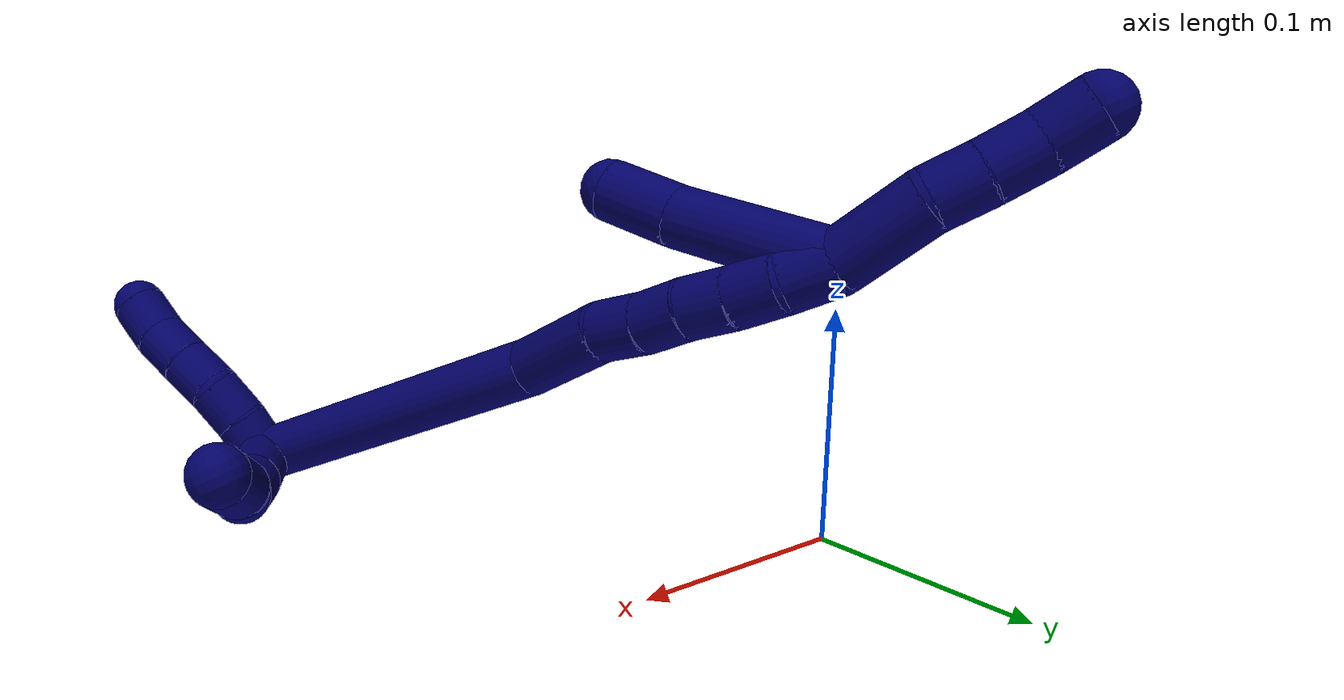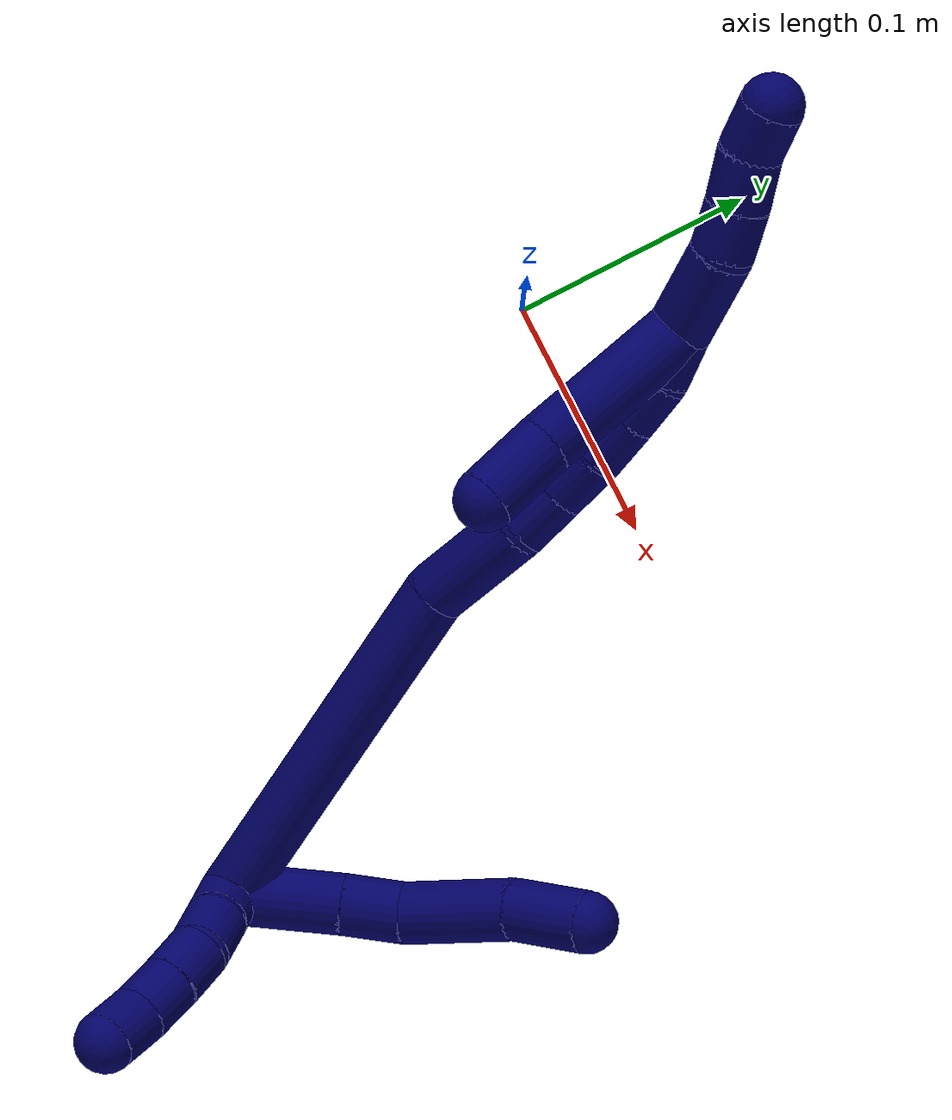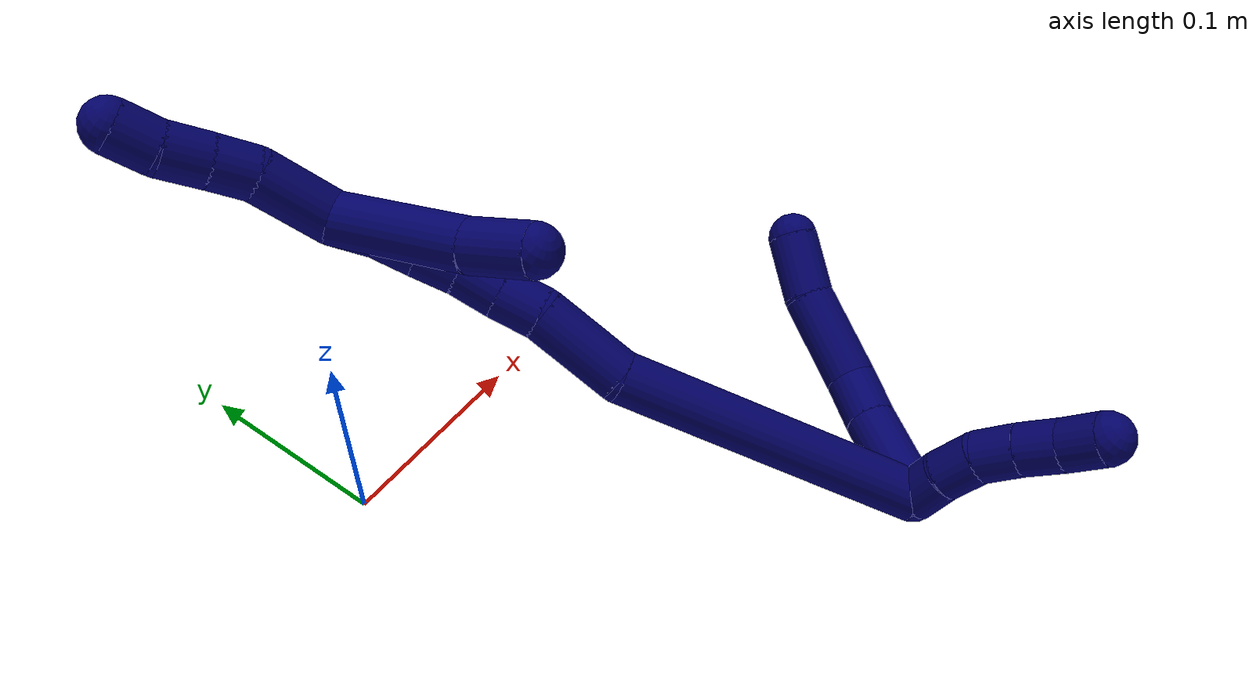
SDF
<sdf version="1.7">
 <world name="default">
  <model name="7">
   <static>0</static>
   <link name="7">
    <collision name="collision-cylinder-e_1_2_8">
     <pose>0.014769 0.016837 -0.003746 -1.78971 0.708109 -0.863764</pose>
     <geometry><cylinder><radius>0.0125</radius><length>0.045416</length></cylinder></geometry>
     <surface>
      <friction><ode><mu>1.16</mu><mu2>1.16</mu2><slip1>0</slip1><slip2>0</slip2></ode></friction>
      <contact><ode><kp>1e+06</kp><kd>1</kd><max_vel>0</max_vel><min_depth>0.001</min_depth></ode></contact>
     </surface>
    </collision>
    <visual name="visual-cylinder-e_1_2_8">
     <pose>0.014769 0.016837 -0.003746 -1.78971 0.708109 -0.863764</pose>
     <geometry><cylinder><radius>0.0125</radius><length>0.045416</length></cylinder></geometry>
     <material><ambient>0.003922 0 0.403922 1</ambient></material>
    </visual>
    <collision name="collision-cylinder-e_2_8_9">
     <pose>0.038016 0.042911 -0.008843 -1.71604 0.737312 -0.840608</pose>
     <geometry><cylinder><radius>0.0125</radius><length>0.025219</length></cylinder></geometry>
     <surface>
      <friction><ode><mu>1.16</mu><mu2>1.16</mu2><slip1>0</slip1><slip2>0</slip2></ode></friction>
      <contact><ode><kp>1e+06</kp><kd>1</kd><max_vel>0</max_vel><min_depth>0.001</min_depth></ode></contact>
     </surface>
    </collision>
    <visual name="visual-cylinder-e_2_8_9">
     <pose>0.038016 0.042911 -0.008843 -1.71604 0.737312 -0.840608</pose>
     <geometry><cylinder><radius>0.0125</radius><length>0.025219</length></cylinder></geometry>
     <material><ambient>0.003922 0 0.403922 1</ambient></material>
    </visual>
    <collision name="collision-cylinder-e_3_9_10">
     <pose>0.05714 0.07295 -0.007721 -1.4525 0.470194 -0.419236</pose>
     <geometry><cylinder><radius>0.0125</radius><length>0.046999</length></cylinder></geometry>
     <surface>
      <friction><ode><mu>1.16</mu><mu2>1.16</mu2><slip1>0</slip1><slip2>0</slip2></ode></friction>
      <contact><ode><kp>1e+06</kp><kd>1</kd><max_vel>0</max_vel><min_depth>0.001</min_depth></ode></contact>
     </surface>
    </collision>
    <visual name="visual-cylinder-e_3_9_10">
     <pose>0.05714 0.07295 -0.007721 -1.4525 0.470194 -0.419236</pose>
     <geometry><cylinder><radius>0.0125</radius><length>0.046999</length></cylinder></geometry>
     <material><ambient>0.003922 0 0.403922 1</ambient></material>
    </visual>
    <collision name="collision-cylinder-e_4_10_6">
     <pose>0.076901 0.106505 -0.001223 -1.26497 0.598279 -0.44459</pose>
     <geometry><cylinder><radius>0.0125</radius><length>0.032365</length></cylinder></geometry>
     <surface>
      <friction><ode><mu>1.16</mu><mu2>1.16</mu2><slip1>0</slip1><slip2>0</slip2></ode></friction>
      <contact><ode><kp>1e+06</kp><kd>1</kd><max_vel>0</max_vel><min_depth>0.001</min_depth></ode></contact>
     </surface>
    </collision>
    <visual name="visual-cylinder-e_4_10_6">
     <pose>0.076901 0.106505 -0.001223 -1.26497 0.598279 -0.44459</pose>
     <geometry><cylinder><radius>0.0125</radius><length>0.032365</length></cylinder></geometry>
     <material><ambient>0.003922 0 0.403922 1</ambient></material>
    </visual>
    <collision name="collision-cylinder-e_1_2_11">
     <pose>0.001454 -0.000714 0.009868 0.072195 0.145901 0.005278</pose>
     <geometry><cylinder><radius>0.0125</radius><length>0.02</length></cylinder></geometry>
     <surface>
      <friction><ode><mu>1.16</mu><mu2>1.16</mu2><slip1>0</slip1><slip2>0</slip2></ode></friction>
      <contact><ode><kp>1e+06</kp><kd>1</kd><max_vel>0</max_vel><min_depth>0.001</min_depth></ode></contact>
     </surface>
    </collision>
    <visual name="visual-cylinder-e_1_2_11">
     <pose>0.001454 -0.000714 0.009868 0.072195 0.145901 0.005278</pose>
     <geometry><cylinder><radius>0.0125</radius><length>0.02</length></cylinder></geometry>
     <material><ambient>0.003922 0 0.403922 1</ambient></material>
    </visual>
    <collision name="collision-cylinder-e_2_11_12">
     <pose>0.00482 -0.003554 0.029318 0.218434 0.192372 0.021159</pose>
     <geometry><cylinder><radius>0.0125</radius><length>0.02</length></cylinder></geometry>
     <surface>
      <friction><ode><mu>1.16</mu><mu2>1.16</mu2><slip1>0</slip1><slip2>0</slip2></ode></friction>
      <contact><ode><kp>1e+06</kp><kd>1</kd><max_vel>0</max_vel><min_depth>0.001</min_depth></ode></contact>
     </surface>
    </collision>
    <visual name="visual-cylinder-e_2_11_12">
     <pose>0.00482 -0.003554 0.029318 0.218434 0.192372 0.021159</pose>
     <geometry><cylinder><radius>0.0125</radius><length>0.02</length></cylinder></geometry>
     <material><ambient>0.003922 0 0.403922 1</ambient></material>
    </visual>
    <collision name="collision-cylinder-e_3_12_13">
     <pose>0.007805 -0.010404 0.047649 0.495024 0.107515 0.027193</pose>
     <geometry><cylinder><radius>0.0125</radius><length>0.02</length></cylinder></geometry>
     <surface>
      <friction><ode><mu>1.16</mu><mu2>1.16</mu2><slip1>0</slip1><slip2>0</slip2></ode></friction>
      <contact><ode><kp>1e+06</kp><kd>1</kd><max_vel>0</max_vel><min_depth>0.001</min_depth></ode></contact>
     </surface>
    </collision>
    <visual name="visual-cylinder-e_3_12_13">
     <pose>0.007805 -0.010404 0.047649 0.495024 0.107515 0.027193</pose>
     <geometry><cylinder><radius>0.0125</radius><length>0.02</length></cylinder></geometry>
     <material><ambient>0.003922 0 0.403922 1</ambient></material>
    </visual>
    <collision name="collision-cylinder-e_4_13_14">
     <pose>0.009479 -0.020289 0.064942 0.543474 0.060148 0.016764</pose>
     <geometry><cylinder><radius>0.0125</radius><length>0.02</length></cylinder></geometry>
     <surface>
      <friction><ode><mu>1.16</mu><mu2>1.16</mu2><slip1>0</slip1><slip2>0</slip2></ode></friction>
      <contact><ode><kp>1e+06</kp><kd>1</kd><max_vel>0</max_vel><min_depth>0.001</min_depth></ode></contact>
     </surface>
    </collision>
    <visual name="visual-cylinder-e_4_13_14">
     <pose>0.009479 -0.020289 0.064942 0.543474 0.060148 0.016764</pose>
     <geometry><cylinder><radius>0.0125</radius><length>0.02</length></cylinder></geometry>
     <material><ambient>0.003922 0 0.403922 1</ambient></material>
    </visual>
    <collision name="collision-cylinder-e_5_14_5">
     <pose>0.009684 -0.029493 0.082624 0.416442 -0.039614 -0.008371</pose>
     <geometry><cylinder><radius>0.0125</radius><length>0.02</length></cylinder></geometry>
     <surface>
      <friction><ode><mu>1.16</mu><mu2>1.16</mu2><slip1>0</slip1><slip2>0</slip2></ode></friction>
      <contact><ode><kp>1e+06</kp><kd>1</kd><max_vel>0</max_vel><min_depth>0.001</min_depth></ode></contact>
     </surface>
    </collision>
    <visual name="visual-cylinder-e_5_14_5">
     <pose>0.009684 -0.029493 0.082624 0.416442 -0.039614 -0.008371</pose>
     <geometry><cylinder><radius>0.0125</radius><length>0.02</length></cylinder></geometry>
     <material><ambient>0.003922 0 0.403922 1</ambient></material>
    </visual>
    <collision name="collision-cylinder-e_1_2_15">
     <pose>-0.026279 0.071866 -0.005558 -1.64799 -0.349603 0.37705</pose>
     <geometry><cylinder><radius>0.0125</radius><length>0.153443</length></cylinder></geometry>
     <surface>
      <friction><ode><mu>1.16</mu><mu2>1.16</mu2><slip1>0</slip1><slip2>0</slip2></ode></friction>
      <contact><ode><kp>1e+06</kp><kd>1</kd><max_vel>0</max_vel><min_depth>0.001</min_depth></ode></contact>
     </surface>
    </collision>
    <visual name="visual-cylinder-e_1_2_15">
     <pose>-0.026279 0.071866 -0.005558 -1.64799 -0.349603 0.37705</pose>
     <geometry><cylinder><radius>0.0125</radius><length>0.153443</length></cylinder></geometry>
     <material><ambient>0.003922 0 0.403922 1</ambient></material>
    </visual>
    <collision name="collision-cylinder-e_2_15_16">
     <pose>-0.054334 0.166199 -0.009985 -1.52048 -0.078768 0.074905</pose>
     <geometry><cylinder><radius>0.0125</radius><length>0.045131</length></cylinder></geometry>
     <surface>
      <friction><ode><mu>1.16</mu><mu2>1.16</mu2><slip1>0</slip1><slip2>0</slip2></ode></friction>
      <contact><ode><kp>1e+06</kp><kd>1</kd><max_vel>0</max_vel><min_depth>0.001</min_depth></ode></contact>
     </surface>
    </collision>
    <visual name="visual-cylinder-e_2_15_16">
     <pose>-0.054334 0.166199 -0.009985 -1.52048 -0.078768 0.074905</pose>
     <geometry><cylinder><radius>0.0125</radius><length>0.045131</length></cylinder></geometry>
     <material><ambient>0.003922 0 0.403922 1</ambient></material>
    </visual>
    <collision name="collision-cylinder-e_3_16_17">
     <pose>-0.057711 0.198968 -0.010602 -1.73887 -0.152068 0.179905</pose>
     <geometry><cylinder><radius>0.0125</radius><length>0.021142</length></cylinder></geometry>
     <surface>
      <friction><ode><mu>1.16</mu><mu2>1.16</mu2><slip1>0</slip1><slip2>0</slip2></ode></friction>
      <contact><ode><kp>1e+06</kp><kd>1</kd><max_vel>0</max_vel><min_depth>0.001</min_depth></ode></contact>
     </surface>
    </collision>
    <visual name="visual-cylinder-e_3_16_17">
     <pose>-0.057711 0.198968 -0.010602 -1.73887 -0.152068 0.179905</pose>
     <geometry><cylinder><radius>0.0125</radius><length>0.021142</length></cylinder></geometry>
     <material><ambient>0.003922 0 0.403922 1</ambient></material>
    </visual>
    <collision name="collision-cylinder-e_4_17_18">
     <pose>-0.061042 0.219207 -0.012858 -1.62187 -0.172137 0.181114</pose>
     <geometry><cylinder><radius>0.0125</radius><length>0.0202</length></cylinder></geometry>
     <surface>
      <friction><ode><mu>1.16</mu><mu2>1.16</mu2><slip1>0</slip1><slip2>0</slip2></ode></friction>
      <contact><ode><kp>1e+06</kp><kd>1</kd><max_vel>0</max_vel><min_depth>0.001</min_depth></ode></contact>
     </surface>
    </collision>
    <visual name="visual-cylinder-e_4_17_18">
     <pose>-0.061042 0.219207 -0.012858 -1.62187 -0.172137 0.181114</pose>
     <geometry><cylinder><radius>0.0125</radius><length>0.0202</length></cylinder></geometry>
     <material><ambient>0.003922 0 0.403922 1</ambient></material>
    </visual>
    <collision name="collision-cylinder-e_5_18_19">
     <pose>-0.065193 0.238749 -0.014862 -1.7253 -0.244165 0.284623</pose>
     <geometry><cylinder><radius>0.0125</radius><length>0.020032</length></cylinder></geometry>
     <surface>
      <friction><ode><mu>1.16</mu><mu2>1.16</mu2><slip1>0</slip1><slip2>0</slip2></ode></friction>
      <contact><ode><kp>1e+06</kp><kd>1</kd><max_vel>0</max_vel><min_depth>0.001</min_depth></ode></contact>
     </surface>
    </collision>
    <visual name="visual-cylinder-e_5_18_19">
     <pose>-0.065193 0.238749 -0.014862 -1.7253 -0.244165 0.284623</pose>
     <geometry><cylinder><radius>0.0125</radius><length>0.020032</length></cylinder></geometry>
     <material><ambient>0.003922 0 0.403922 1</ambient></material>
    </visual>
    <collision name="collision-cylinder-e_6_19_20">
     <pose>-0.070326 0.257963 -0.017143 -1.65233 -0.274102 0.297085</pose>
     <geometry><cylinder><radius>0.0125</radius><length>0.020035</length></cylinder></geometry>
     <surface>
      <friction><ode><mu>1.16</mu><mu2>1.16</mu2><slip1>0</slip1><slip2>0</slip2></ode></friction>
      <contact><ode><kp>1e+06</kp><kd>1</kd><max_vel>0</max_vel><min_depth>0.001</min_depth></ode></contact>
     </surface>
    </collision>
    <visual name="visual-cylinder-e_6_19_20">
     <pose>-0.070326 0.257963 -0.017143 -1.65233 -0.274102 0.297085</pose>
     <geometry><cylinder><radius>0.0125</radius><length>0.020035</length></cylinder></geometry>
     <material><ambient>0.003922 0 0.403922 1</ambient></material>
    </visual>
    <collision name="collision-cylinder-e_7_20_1">
     <pose>-0.077943 0.276277 -0.018547 -1.64185 -0.512194 0.548142</pose>
     <geometry><cylinder><radius>0.0125</radius><length>0.020016</length></cylinder></geometry>
     <surface>
      <friction><ode><mu>1.16</mu><mu2>1.16</mu2><slip1>0</slip1><slip2>0</slip2></ode></friction>
      <contact><ode><kp>1e+06</kp><kd>1</kd><max_vel>0</max_vel><min_depth>0.001</min_depth></ode></contact>
     </surface>
    </collision>
    <visual name="visual-cylinder-e_7_20_1">
     <pose>-0.077943 0.276277 -0.018547 -1.64185 -0.512194 0.548142</pose>
     <geometry><cylinder><radius>0.0125</radius><length>0.020016</length></cylinder></geometry>
     <material><ambient>0.003922 0 0.403922 1</ambient></material>
    </visual>
    <collision name="collision-cylinder-e_1_1_21">
     <pose>-0.090573 0.302053 -0.015341 -1.3504 -0.415782 0.33466</pose>
     <geometry><cylinder><radius>0.0125</radius><length>0.038256</length></cylinder></geometry>
     <surface>
      <friction><ode><mu>1.16</mu><mu2>1.16</mu2><slip1>0</slip1><slip2>0</slip2></ode></friction>
      <contact><ode><kp>1e+06</kp><kd>1</kd><max_vel>0</max_vel><min_depth>0.001</min_depth></ode></contact>
     </surface>
    </collision>
    <visual name="visual-cylinder-e_1_1_21">
     <pose>-0.090573 0.302053 -0.015341 -1.3504 -0.415782 0.33466</pose>
     <geometry><cylinder><radius>0.0125</radius><length>0.038256</length></cylinder></geometry>
     <material><ambient>0.003922 0 0.403922 1</ambient></material>
    </visual>
    <collision name="collision-cylinder-e_2_21_22">
     <pose>-0.104133 0.327264 -0.011147 -1.52554 -0.621642 0.595756</pose>
     <geometry><cylinder><radius>0.0125</radius><length>0.020035</length></cylinder></geometry>
     <surface>
      <friction><ode><mu>1.16</mu><mu2>1.16</mu2><slip1>0</slip1><slip2>0</slip2></ode></friction>
      <contact><ode><kp>1e+06</kp><kd>1</kd><max_vel>0</max_vel><min_depth>0.001</min_depth></ode></contact>
     </surface>
    </collision>
    <visual name="visual-cylinder-e_2_21_22">
     <pose>-0.104133 0.327264 -0.011147 -1.52554 -0.621642 0.595756</pose>
     <geometry><cylinder><radius>0.0125</radius><length>0.020035</length></cylinder></geometry>
     <material><ambient>0.003922 0 0.403922 1</ambient></material>
    </visual>
    <collision name="collision-cylinder-e_3_22_23">
     <pose>-0.116742 0.343646 -0.009946 -1.47009 -0.685248 0.623878</pose>
     <geometry><cylinder><radius>0.0125</radius><length>0.021411</length></cylinder></geometry>
     <surface>
      <friction><ode><mu>1.16</mu><mu2>1.16</mu2><slip1>0</slip1><slip2>0</slip2></ode></friction>
      <contact><ode><kp>1e+06</kp><kd>1</kd><max_vel>0</max_vel><min_depth>0.001</min_depth></ode></contact>
     </surface>
    </collision>
    <visual name="visual-cylinder-e_3_22_23">
     <pose>-0.116742 0.343646 -0.009946 -1.47009 -0.685248 0.623878</pose>
     <geometry><cylinder><radius>0.0125</radius><length>0.021411</length></cylinder></geometry>
     <material><ambient>0.003922 0 0.403922 1</ambient></material>
    </visual>
    <collision name="collision-cylinder-e_4_23_4">
     <pose>-0.128178 0.360777 -0.00758 -1.40004 -0.477073 0.404058</pose>
     <geometry><cylinder><radius>0.0125</radius><length>0.020298</length></cylinder></geometry>
     <surface>
      <friction><ode><mu>1.16</mu><mu2>1.16</mu2><slip1>0</slip1><slip2>0</slip2></ode></friction>
      <contact><ode><kp>1e+06</kp><kd>1</kd><max_vel>0</max_vel><min_depth>0.001</min_depth></ode></contact>
     </surface>
    </collision>
    <visual name="visual-cylinder-e_4_23_4">
     <pose>-0.128178 0.360777 -0.00758 -1.40004 -0.477073 0.404058</pose>
     <geometry><cylinder><radius>0.0125</radius><length>0.020298</length></cylinder></geometry>
     <material><ambient>0.003922 0 0.403922 1</ambient></material>
    </visual>
    <collision name="collision-cylinder-e_1_1_24">
     <pose>-0.081098 0.256998 0.000414 0.960192 0.051195 0.026663</pose>
     <geometry><cylinder><radius>0.0125</radius><length>0.068392</length></cylinder></geometry>
     <surface>
      <friction><ode><mu>1.16</mu><mu2>1.16</mu2><slip1>0</slip1><slip2>0</slip2></ode></friction>
      <contact><ode><kp>1e+06</kp><kd>1</kd><max_vel>0</max_vel><min_depth>0.001</min_depth></ode></contact>
     </surface>
    </collision>
    <visual name="visual-cylinder-e_1_1_24">
     <pose>-0.081098 0.256998 0.000414 0.960192 0.051195 0.026663</pose>
     <geometry><cylinder><radius>0.0125</radius><length>0.068392</length></cylinder></geometry>
     <material><ambient>0.003922 0 0.403922 1</ambient></material>
    </visual>
    <collision name="collision-cylinder-e_2_24_3">
     <pose>-0.077994 0.21718 0.030378 0.850822 0.085744 0.038868</pose>
     <geometry><cylinder><radius>0.0125</radius><length>0.031608</length></cylinder></geometry>
     <surface>
      <friction><ode><mu>1.16</mu><mu2>1.16</mu2><slip1>0</slip1><slip2>0</slip2></ode></friction>
      <contact><ode><kp>1e+06</kp><kd>1</kd><max_vel>0</max_vel><min_depth>0.001</min_depth></ode></contact>
     </surface>
    </collision>
    <visual name="visual-cylinder-e_2_24_3">
     <pose>-0.077994 0.21718 0.030378 0.850822 0.085744 0.038868</pose>
     <geometry><cylinder><radius>0.0125</radius><length>0.031608</length></cylinder></geometry>
     <material><ambient>0.003922 0 0.403922 1</ambient></material>
    </visual>
    <collision name="collision-sphere-3">
     <pose>-0.076641 0.205342 0.04076 0 -0 0</pose>
     <geometry><sphere><radius>0.0125</radius></sphere></geometry>
     <surface>
      <friction><ode><mu>1.16</mu><mu2>1.16</mu2><slip1>0</slip1><slip2>0</slip2></ode></friction>
      <contact><ode><kp>1e+06</kp><kd>1</kd><max_vel>0</max_vel><min_depth>0.001</min_depth></ode></contact>
     </surface>
    </collision>
    <visual name="visual-sphere-3">
     <pose>-0.076641 0.205342 0.04076 0 -0 0</pose>
     <geometry><sphere><radius>0.0125</radius></sphere></geometry>
     <material><ambient>0.003922 0 0.403922 1</ambient></material>
    </visual>
    <collision name="collision-sphere-24">
     <pose>-0.079348 0.229018 0.019995 0 -0 0</pose>
     <geometry><sphere><radius>0.0125</radius></sphere></geometry>
     <surface>
      <friction><ode><mu>1.16</mu><mu2>1.16</mu2><slip1>0</slip1><slip2>0</slip2></ode></friction>
      <contact><ode><kp>1e+06</kp><kd>1</kd><max_vel>0</max_vel><min_depth>0.001</min_depth></ode></contact>
     </surface>
    </collision>
    <visual name="visual-sphere-24">
     <pose>-0.079348 0.229018 0.019995 0 -0 0</pose>
     <geometry><sphere><radius>0.0125</radius></sphere></geometry>
     <material><ambient>0.003922 0 0.403922 1</ambient></material>
    </visual>
    <collision name="collision-sphere-4">
     <pose>-0.132838 0.369662 -0.006048 0 -0 0</pose>
     <geometry><sphere><radius>0.0125</radius></sphere></geometry>
     <surface>
      <friction><ode><mu>1.16</mu><mu2>1.16</mu2><slip1>0</slip1><slip2>0</slip2></ode></friction>
      <contact><ode><kp>1e+06</kp><kd>1</kd><max_vel>0</max_vel><min_depth>0.001</min_depth></ode></contact>
     </surface>
    </collision>
    <visual name="visual-sphere-4">
     <pose>-0.132838 0.369662 -0.006048 0 -0 0</pose>
     <geometry><sphere><radius>0.0125</radius></sphere></geometry>
     <material><ambient>0.003922 0 0.403922 1</ambient></material>
    </visual>
    <collision name="collision-sphere-23">
     <pose>-0.123517 0.351892 -0.009112 0 -0 0</pose>
     <geometry><sphere><radius>0.0125</radius></sphere></geometry>
     <surface>
      <friction><ode><mu>1.16</mu><mu2>1.16</mu2><slip1>0</slip1><slip2>0</slip2></ode></friction>
      <contact><ode><kp>1e+06</kp><kd>1</kd><max_vel>0</max_vel><min_depth>0.001</min_depth></ode></contact>
     </surface>
    </collision>
    <visual name="visual-sphere-23">
     <pose>-0.123517 0.351892 -0.009112 0 -0 0</pose>
     <geometry><sphere><radius>0.0125</radius></sphere></geometry>
     <material><ambient>0.003922 0 0.403922 1</ambient></material>
    </visual>
    <collision name="collision-sphere-22">
     <pose>-0.109967 0.335399 -0.010779 0 -0 0</pose>
     <geometry><sphere><radius>0.0125</radius></sphere></geometry>
     <surface>
      <friction><ode><mu>1.16</mu><mu2>1.16</mu2><slip1>0</slip1><slip2>0</slip2></ode></friction>
      <contact><ode><kp>1e+06</kp><kd>1</kd><max_vel>0</max_vel><min_depth>0.001</min_depth></ode></contact>
     </surface>
    </collision>
    <visual name="visual-sphere-22">
     <pose>-0.109967 0.335399 -0.010779 0 -0 0</pose>
     <geometry><sphere><radius>0.0125</radius></sphere></geometry>
     <material><ambient>0.003922 0 0.403922 1</ambient></material>
    </visual>
    <collision name="collision-sphere-21">
     <pose>-0.098299 0.319128 -0.011516 0 -0 0</pose>
     <geometry><sphere><radius>0.0125</radius></sphere></geometry>
     <surface>
      <friction><ode><mu>1.16</mu><mu2>1.16</mu2><slip1>0</slip1><slip2>0</slip2></ode></friction>
      <contact><ode><kp>1e+06</kp><kd>1</kd><max_vel>0</max_vel><min_depth>0.001</min_depth></ode></contact>
     </surface>
    </collision>
    <visual name="visual-sphere-21">
     <pose>-0.098299 0.319128 -0.011516 0 -0 0</pose>
     <geometry><sphere><radius>0.0125</radius></sphere></geometry>
     <material><ambient>0.003922 0 0.403922 1</ambient></material>
    </visual>
    <collision name="collision-sphere-1">
     <pose>-0.082848 0.284979 -0.019167 0 -0 0</pose>
     <geometry><sphere><radius>0.0125</radius></sphere></geometry>
     <surface>
      <friction><ode><mu>1.16</mu><mu2>1.16</mu2><slip1>0</slip1><slip2>0</slip2></ode></friction>
      <contact><ode><kp>1e+06</kp><kd>1</kd><max_vel>0</max_vel><min_depth>0.001</min_depth></ode></contact>
     </surface>
    </collision>
    <visual name="visual-sphere-1">
     <pose>-0.082848 0.284979 -0.019167 0 -0 0</pose>
     <geometry><sphere><radius>0.0125</radius></sphere></geometry>
     <material><ambient>0.003922 0 0.403922 1</ambient></material>
    </visual>
    <collision name="collision-sphere-11">
     <pose>0.002908 -0.001427 0.019736 0 -0 0</pose>
     <geometry><sphere><radius>0.0125</radius></sphere></geometry>
     <surface>
      <friction><ode><mu>1.16</mu><mu2>1.16</mu2><slip1>0</slip1><slip2>0</slip2></ode></friction>
      <contact><ode><kp>1e+06</kp><kd>1</kd><max_vel>0</max_vel><min_depth>0.001</min_depth></ode></contact>
     </surface>
    </collision>
    <visual name="visual-sphere-11">
     <pose>0.002908 -0.001427 0.019736 0 -0 0</pose>
     <geometry><sphere><radius>0.0125</radius></sphere></geometry>
     <material><ambient>0.003922 0 0.403922 1</ambient></material>
    </visual>
    <collision name="collision-sphere-6">
     <pose>0.086016 0.119256 0.002803 0 -0 0</pose>
     <geometry><sphere><radius>0.0125</radius></sphere></geometry>
     <surface>
      <friction><ode><mu>1.16</mu><mu2>1.16</mu2><slip1>0</slip1><slip2>0</slip2></ode></friction>
      <contact><ode><kp>1e+06</kp><kd>1</kd><max_vel>0</max_vel><min_depth>0.001</min_depth></ode></contact>
     </surface>
    </collision>
    <visual name="visual-sphere-6">
     <pose>0.086016 0.119256 0.002803 0 -0 0</pose>
     <geometry><sphere><radius>0.0125</radius></sphere></geometry>
     <material><ambient>0.003922 0 0.403922 1</ambient></material>
    </visual>
    <collision name="collision-sphere-10">
     <pose>0.067787 0.093753 -0.005249 0 -0 0</pose>
     <geometry><sphere><radius>0.0125</radius></sphere></geometry>
     <surface>
      <friction><ode><mu>1.16</mu><mu2>1.16</mu2><slip1>0</slip1><slip2>0</slip2></ode></friction>
      <contact><ode><kp>1e+06</kp><kd>1</kd><max_vel>0</max_vel><min_depth>0.001</min_depth></ode></contact>
     </surface>
    </collision>
    <visual name="visual-sphere-10">
     <pose>0.067787 0.093753 -0.005249 0 -0 0</pose>
     <geometry><sphere><radius>0.0125</radius></sphere></geometry>
     <material><ambient>0.003922 0 0.403922 1</ambient></material>
    </visual>
    <collision name="collision-sphere-9">
     <pose>0.046494 0.052147 -0.010194 0 -0 0</pose>
     <geometry><sphere><radius>0.0125</radius></sphere></geometry>
     <surface>
      <friction><ode><mu>1.16</mu><mu2>1.16</mu2><slip1>0</slip1><slip2>0</slip2></ode></friction>
      <contact><ode><kp>1e+06</kp><kd>1</kd><max_vel>0</max_vel><min_depth>0.001</min_depth></ode></contact>
     </surface>
    </collision>
    <visual name="visual-sphere-9">
     <pose>0.046494 0.052147 -0.010194 0 -0 0</pose>
     <geometry><sphere><radius>0.0125</radius></sphere></geometry>
     <material><ambient>0.003922 0 0.403922 1</ambient></material>
    </visual>
    <collision name="collision-sphere-2">
     <geometry><sphere><radius>0.0125</radius></sphere></geometry>
     <surface>
      <friction><ode><mu>1.16</mu><mu2>1.16</mu2><slip1>0</slip1><slip2>0</slip2></ode></friction>
      <contact><ode><kp>1e+06</kp><kd>1</kd><max_vel>0</max_vel><min_depth>0.001</min_depth></ode></contact>
     </surface>
    </collision>
    <visual name="visual-sphere-2">
     <geometry><sphere><radius>0.0125</radius></sphere></geometry>
     <material><ambient>0.003922 0 0.403922 1</ambient></material>
    </visual>
    <collision name="collision-sphere-19">
     <pose>-0.067615 0.248352 -0.016357 0 -0 0</pose>
     <geometry><sphere><radius>0.0125</radius></sphere></geometry>
     <surface>
      <friction><ode><mu>1.16</mu><mu2>1.16</mu2><slip1>0</slip1><slip2>0</slip2></ode></friction>
      <contact><ode><kp>1e+06</kp><kd>1</kd><max_vel>0</max_vel><min_depth>0.001</min_depth></ode></contact>
     </surface>
    </collision>
    <visual name="visual-sphere-19">
     <pose>-0.067615 0.248352 -0.016357 0 -0 0</pose>
     <geometry><sphere><radius>0.0125</radius></sphere></geometry>
     <material><ambient>0.003922 0 0.403922 1</ambient></material>
    </visual>
    <collision name="collision-sphere-8">
     <pose>0.029539 0.033675 -0.007492 0 -0 0</pose>
     <geometry><sphere><radius>0.0125</radius></sphere></geometry>
     <surface>
      <friction><ode><mu>1.16</mu><mu2>1.16</mu2><slip1>0</slip1><slip2>0</slip2></ode></friction>
      <contact><ode><kp>1e+06</kp><kd>1</kd><max_vel>0</max_vel><min_depth>0.001</min_depth></ode></contact>
     </surface>
    </collision>
    <visual name="visual-sphere-8">
     <pose>0.029539 0.033675 -0.007492 0 -0 0</pose>
     <geometry><sphere><radius>0.0125</radius></sphere></geometry>
     <material><ambient>0.003922 0 0.403922 1</ambient></material>
    </visual>
    <collision name="collision-sphere-12">
     <pose>0.006731 -0.005681 0.038901 0 -0 0</pose>
     <geometry><sphere><radius>0.0125</radius></sphere></geometry>
     <surface>
      <friction><ode><mu>1.16</mu><mu2>1.16</mu2><slip1>0</slip1><slip2>0</slip2></ode></friction>
      <contact><ode><kp>1e+06</kp><kd>1</kd><max_vel>0</max_vel><min_depth>0.001</min_depth></ode></contact>
     </surface>
    </collision>
    <visual name="visual-sphere-12">
     <pose>0.006731 -0.005681 0.038901 0 -0 0</pose>
     <geometry><sphere><radius>0.0125</radius></sphere></geometry>
     <material><ambient>0.003922 0 0.403922 1</ambient></material>
    </visual>
    <collision name="collision-sphere-13">
     <pose>0.008878 -0.015128 0.056398 0 -0 0</pose>
     <geometry><sphere><radius>0.0125</radius></sphere></geometry>
     <surface>
      <friction><ode><mu>1.16</mu><mu2>1.16</mu2><slip1>0</slip1><slip2>0</slip2></ode></friction>
      <contact><ode><kp>1e+06</kp><kd>1</kd><max_vel>0</max_vel><min_depth>0.001</min_depth></ode></contact>
     </surface>
    </collision>
    <visual name="visual-sphere-13">
     <pose>0.008878 -0.015128 0.056398 0 -0 0</pose>
     <geometry><sphere><radius>0.0125</radius></sphere></geometry>
     <material><ambient>0.003922 0 0.403922 1</ambient></material>
    </visual>
    <collision name="collision-sphere-14">
     <pose>0.01008 -0.025451 0.073485 0 -0 0</pose>
     <geometry><sphere><radius>0.0125</radius></sphere></geometry>
     <surface>
      <friction><ode><mu>1.16</mu><mu2>1.16</mu2><slip1>0</slip1><slip2>0</slip2></ode></friction>
      <contact><ode><kp>1e+06</kp><kd>1</kd><max_vel>0</max_vel><min_depth>0.001</min_depth></ode></contact>
     </surface>
    </collision>
    <visual name="visual-sphere-14">
     <pose>0.01008 -0.025451 0.073485 0 -0 0</pose>
     <geometry><sphere><radius>0.0125</radius></sphere></geometry>
     <material><ambient>0.003922 0 0.403922 1</ambient></material>
    </visual>
    <collision name="collision-sphere-5">
     <pose>0.009288 -0.033535 0.091762 0 -0 0</pose>
     <geometry><sphere><radius>0.0125</radius></sphere></geometry>
     <surface>
      <friction><ode><mu>1.16</mu><mu2>1.16</mu2><slip1>0</slip1><slip2>0</slip2></ode></friction>
      <contact><ode><kp>1e+06</kp><kd>1</kd><max_vel>0</max_vel><min_depth>0.001</min_depth></ode></contact>
     </surface>
    </collision>
    <visual name="visual-sphere-5">
     <pose>0.009288 -0.033535 0.091762 0 -0 0</pose>
     <geometry><sphere><radius>0.0125</radius></sphere></geometry>
     <material><ambient>0.003922 0 0.403922 1</ambient></material>
    </visual>
    <collision name="collision-sphere-15">
     <pose>-0.052558 0.143732 -0.011117 0 -0 0</pose>
     <geometry><sphere><radius>0.0125</radius></sphere></geometry>
     <surface>
      <friction><ode><mu>1.16</mu><mu2>1.16</mu2><slip1>0</slip1><slip2>0</slip2></ode></friction>
      <contact><ode><kp>1e+06</kp><kd>1</kd><max_vel>0</max_vel><min_depth>0.001</min_depth></ode></contact>
     </surface>
    </collision>
    <visual name="visual-sphere-15">
     <pose>-0.052558 0.143732 -0.011117 0 -0 0</pose>
     <geometry><sphere><radius>0.0125</radius></sphere></geometry>
     <material><ambient>0.003922 0 0.403922 1</ambient></material>
    </visual>
    <collision name="collision-sphere-16">
     <pose>-0.056109 0.188666 -0.008854 0 -0 0</pose>
     <geometry><sphere><radius>0.0125</radius></sphere></geometry>
     <surface>
      <friction><ode><mu>1.16</mu><mu2>1.16</mu2><slip1>0</slip1><slip2>0</slip2></ode></friction>
      <contact><ode><kp>1e+06</kp><kd>1</kd><max_vel>0</max_vel><min_depth>0.001</min_depth></ode></contact>
     </surface>
    </collision>
    <visual name="visual-sphere-16">
     <pose>-0.056109 0.188666 -0.008854 0 -0 0</pose>
     <geometry><sphere><radius>0.0125</radius></sphere></geometry>
     <material><ambient>0.003922 0 0.403922 1</ambient></material>
    </visual>
    <collision name="collision-sphere-17">
     <pose>-0.059312 0.20927 -0.01235 0 -0 0</pose>
     <geometry><sphere><radius>0.0125</radius></sphere></geometry>
     <surface>
      <friction><ode><mu>1.16</mu><mu2>1.16</mu2><slip1>0</slip1><slip2>0</slip2></ode></friction>
      <contact><ode><kp>1e+06</kp><kd>1</kd><max_vel>0</max_vel><min_depth>0.001</min_depth></ode></contact>
     </surface>
    </collision>
    <visual name="visual-sphere-17">
     <pose>-0.059312 0.20927 -0.01235 0 -0 0</pose>
     <geometry><sphere><radius>0.0125</radius></sphere></geometry>
     <material><ambient>0.003922 0 0.403922 1</ambient></material>
    </visual>
    <collision name="collision-sphere-18">
     <pose>-0.062772 0.229145 -0.013366 0 -0 0</pose>
     <geometry><sphere><radius>0.0125</radius></sphere></geometry>
     <surface>
      <friction><ode><mu>1.16</mu><mu2>1.16</mu2><slip1>0</slip1><slip2>0</slip2></ode></friction>
      <contact><ode><kp>1e+06</kp><kd>1</kd><max_vel>0</max_vel><min_depth>0.001</min_depth></ode></contact>
     </surface>
    </collision>
    <visual name="visual-sphere-18">
     <pose>-0.062772 0.229145 -0.013366 0 -0 0</pose>
     <geometry><sphere><radius>0.0125</radius></sphere></geometry>
     <material><ambient>0.003922 0 0.403922 1</ambient></material>
    </visual>
    <collision name="collision-sphere-20">
     <pose>-0.073038 0.267575 -0.017928 0 -0 0</pose>
     <geometry><sphere><radius>0.0125</radius></sphere></geometry>
     <surface>
      <friction><ode><mu>1.16</mu><mu2>1.16</mu2><slip1>0</slip1><slip2>0</slip2></ode></friction>
      <contact><ode><kp>1e+06</kp><kd>1</kd><max_vel>0</max_vel><min_depth>0.001</min_depth></ode></contact>
     </surface>
    </collision>
    <visual name="visual-sphere-20">
     <pose>-0.073038 0.267575 -0.017928 0 -0 0</pose>
     <geometry><sphere><radius>0.0125</radius></sphere></geometry>
     <material><ambient>0.003922 0 0.403922 1</ambient></material>
    </visual>
    <inertial>
     <pose>-0.032544 0.143082 0.001205 0 -0 0</pose>
     <mass>0.75</mass>
     <inertia>
      <ixx>0.00045</ixx>
      <ixy>0</ixy>
      <ixz>0</ixz>
      <iyy>0.000187</iyy>
      <iyz>0</iyz>
      <izz>-0.000198</izz>
     </inertia>
    </inertial>
   </link>
   <pose>0.155716 -0.211305 0.011495 0.454587 0.155407 0.164411</pose>
  </model>
 </world>
</sdf>
